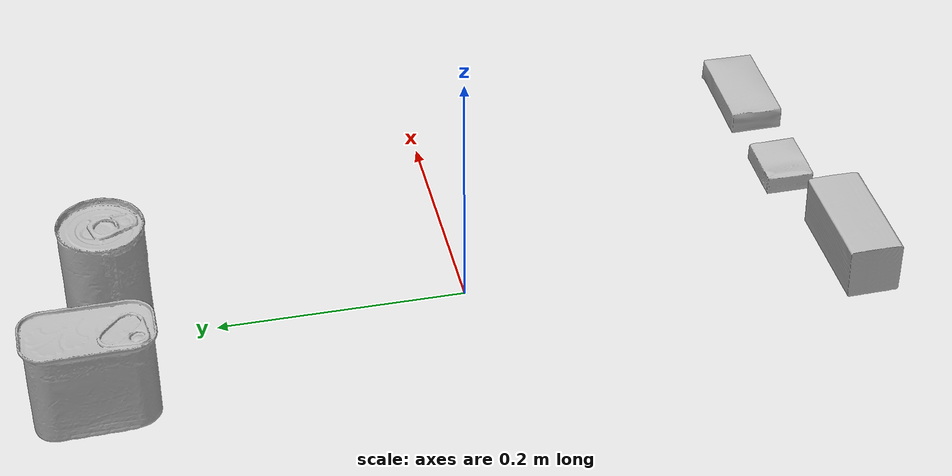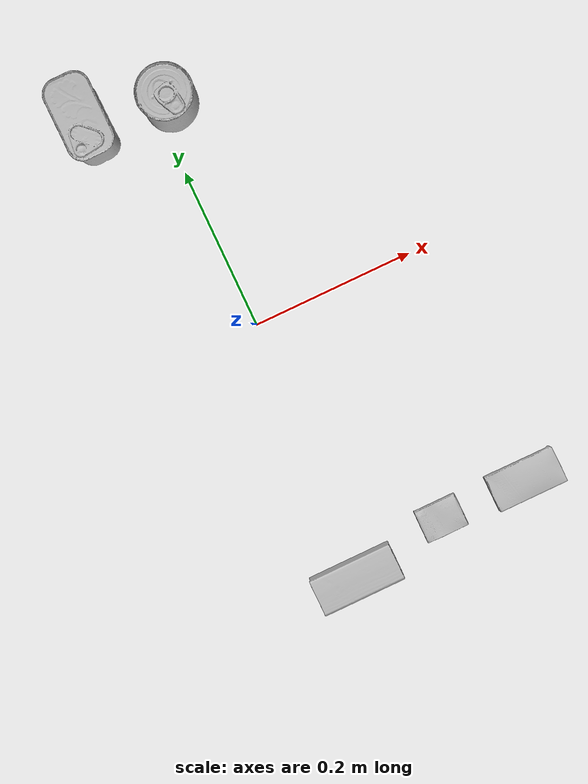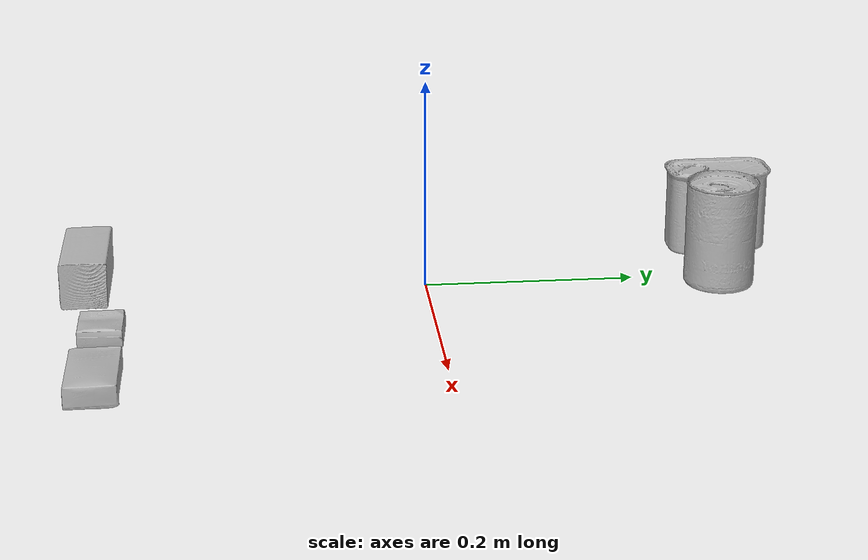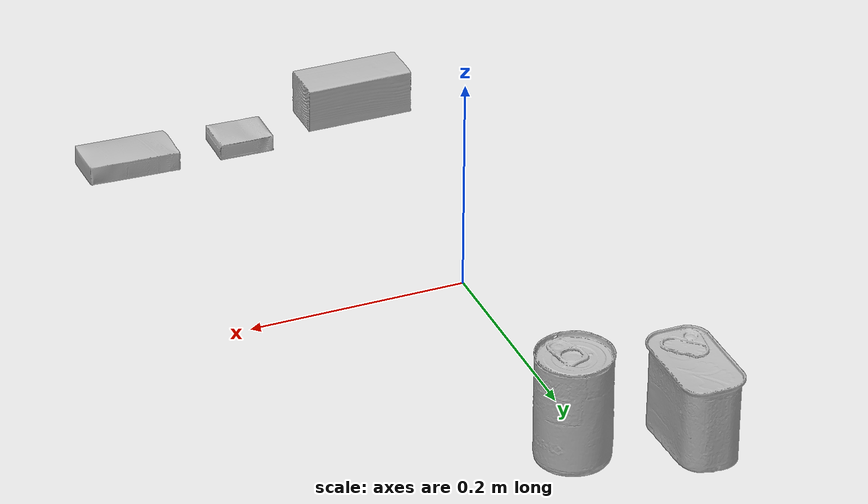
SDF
<?xml version="1.0" ?>
<sdf version="1.4">
  <world name="default">
    <light name="light1" type="point">
      <pose>0 0 1 0 0 0</pose>
      <diffuse>3 3 3 1</diffuse>
      <specular>3 3 3 1</specular>
    </light>
    <light name="light2" type="point">
      <pose>0 0.5 2 0 0 0</pose>
      <diffuse>1 1 1 1</diffuse>
      <specular>1 1 1 1</specular>
    </light>
    <light name="light3" type="point">
      <pose>0 0.5 2 0 0 0</pose>
      <diffuse>3 3 3 1</diffuse>
      <specular>3 3 3 1</specular>
    </light>
    <scene>
      <ambient>0.7 0.7 0.7</ambient>
    </scene>
    <model name="box1">
      <link name="link_box1">
        <collision name="default">
          <geometry>
            <mesh>
              <uri>model://sugar_box/collision_meshes/collision.obj</uri>
              <scale>0.5 0.5 0.5</scale>
            </mesh>
          </geometry>
          <surface>
            <friction>
              <ode>
                <mu>0.5</mu>
                <mu2>0.5</mu2>
              </ode>
            </friction>
          </surface>
        </collision>
        <visual name="default">
          <geometry>
            <mesh>
              <uri>model://sugar_box/visual_meshes/visual.dae</uri>
              <scale>0.5 0.5 0.5</scale>
            </mesh>
          </geometry>
        </visual>
        <inertial>
          <mass>0.048160675913095474</mass>
          <pose>0.0005171863595023751 1.924554817378521e-05 -0.00018182402709499002 -0.0004046258638373534 0.0010506635215919557 0.0026153787891515894</pose>
          <inertia>
            <ixx>1.0031835e-05</ixx>
            <iyy>3.2424945e-05</iyy>
            <izz>3.8816543e-05</izz>
            <ixy>0</ixy>
            <ixz>0</ixz>
            <iyz>0</iyz>
          </inertia>
        </inertial>
      </link>
      <pose>0.2095227688550949 -0.30013349652290344 0.011399305425584316 0.0007749187003156595 -0.023433182292560927 0.00023494298024764982</pose>
    </model>
    <model name="box2">
      <link name="link_box2">
        <collision name="default">
          <geometry>
            <mesh>
              <uri>model://cracker_box/collision_meshes/collision.obj</uri>
              <scale>0.25 0.25 0.25</scale>
            </mesh>
          </geometry>
          <surface>
            <friction>
              <ode>
                <mu>0.5</mu>
                <mu2>0.5</mu2>
              </ode>
            </friction>
          </surface>
        </collision>
        <visual name="default">
          <geometry>
            <mesh>
              <uri>model://cracker_box/visual_meshes/visual.dae</uri>
              <scale>0.25 0.25 0.25</scale>
            </mesh>
          </geometry>
        </visual>
        <inertial>
          <mass>0.047952666878700256</mass>
          <pose>0.00023660370789002627 6.358561950037256e-05 -0.0004257383698131889 -0.0003162075404896153 -0.011106488669099107 0.002546795234185617</pose>
          <inertia>
            <ixx>7.623136e-06</ixx>
            <iyy>1.2587296e-05</iyy>
            <izz>1.7963224e-05</izz>
            <ixy>0</ixy>
            <ixz>0</ixz>
            <iyz>0</iyz>
          </inertia>
        </inertial>
      </link>
      <pose>0.09993372112512589 -0.2998489439487457 0.009120453149080276 -0.01178810738493666 -0.007367107888387582 5.318235835604377e-05</pose>
    </model>
    <model name="box3">
      <link name="link_box3">
        <collision name="default">
          <geometry>
            <mesh>
              <uri>model://wood_block/collision_meshes/collision.obj</uri>
              <scale>0.5 0.5 0.5</scale>
            </mesh>
          </geometry>
          <surface>
            <friction>
              <ode>
                <mu>0.5</mu>
                <mu2>0.5</mu2>
              </ode>
            </friction>
          </surface>
        </collision>
        <visual name="default">
          <geometry>
            <mesh>
              <uri>model://wood_block/visual_meshes/visual.dae</uri>
              <scale>0.5 0.5 0.5</scale>
            </mesh>
          </geometry>
        </visual>
        <inertial>
          <mass>0.27162742614746094</mass>
          <pose>-2.9066577553749084e-06 -0.000285404734313488 0.00013204291462898254 -0.05220780121661256 -0.005192696561201931 -0.006861379819720353</pose>
          <inertia>
            <ixx>9.086965e-05</ixx>
            <iyy>0.00028705722</iyy>
            <izz>0.0002859835</izz>
            <ixy>0</ixy>
            <ixz>0</ixz>
            <iyz>0</iyz>
          </inertia>
        </inertial>
      </link>
      <pose>-0.020058313384652138 -0.31943440437316895 0.022629253566265106 -0.005208493814385256 0.00571871864386391 0.005304268203003009</pose>
    </model>
    <model name="can1">
      <link name="link_can1">
        <collision name="default">
          <geometry>
            <mesh>
              <uri>model://tomato_soup_can/collision_meshes/collision.obj</uri>
              <scale>1.0 1.0 1.0</scale>
            </mesh>
          </geometry>
          <surface>
            <friction>
              <ode>
                <mu>0.5</mu>
                <mu2>0.5</mu2>
              </ode>
            </friction>
          </surface>
        </collision>
        <visual name="default">
          <geometry>
            <mesh>
              <uri>model://tomato_soup_can/visual_meshes/visual.dae</uri>
              <scale>1.0 1.0 1.0</scale>
            </mesh>
          </geometry>
        </visual>
        <inertial>
          <mass>0.33680883049964905</mass>
          <pose>0.0001265227037947625 0.0001080552683561109 -0.0017973986687138677 0.007020065933643549 0.0004229964102555597 -0.009903579397299064</pose>
          <inertia>
            <ixx>0.00036928226</ixx>
            <iyy>0.0003671481</iyy>
            <izz>0.00019139561</izz>
            <ixy>0</ixy>
            <ixz>0</ixz>
            <iyz>0</iyz>
          </inertia>
        </inertial>
      </link>
      <pose>0.019945915788412094 0.28000202775001526 0.05127400904893875 -5.478670146538306e-07 -6.828413316785859e-07 -5.415435247147442e-07</pose>
    </model>
    <model name="can2">
      <link name="link_can2">
        <collision name="default">
          <geometry>
            <mesh>
              <uri>model://potted_meat_can/collision_meshes/collision.obj</uri>
              <scale>1.0 1.0 1.0</scale>
            </mesh>
          </geometry>
          <surface>
            <friction>
              <ode>
                <mu>0.5</mu>
                <mu2>0.5</mu2>
              </ode>
            </friction>
          </surface>
        </collision>
        <visual name="default">
          <geometry>
            <mesh>
              <uri>model://potted_meat_can/visual_meshes/visual.dae</uri>
              <scale>1.0 1.0 1.0</scale>
            </mesh>
          </geometry>
        </visual>
        <inertial>
          <mass>0.5009446144104004</mass>
          <pose>0.00022888141393195838 -5.9891164710279554e-05 -0.0006367440801113844 -0.028093347044227477 -0.007232596108467961 0.015406262357490775</pose>
          <inertia>
            <ixx>0.0006444129</ixx>
            <iyy>0.0003915297</iyy>
            <izz>0.00046868768</izz>
            <ixy>0</ixy>
            <ixz>0</ixz>
            <iyz>0</iyz>
          </inertia>
        </inertial>
      </link>
      <pose>-0.08010154962539673 0.3000054657459259 0.04212800785899162 -5.399485519452652e-08 -4.4555048975076595e-07 -8.898493898491928e-08</pose>
    </model>
  </world>
</sdf>
